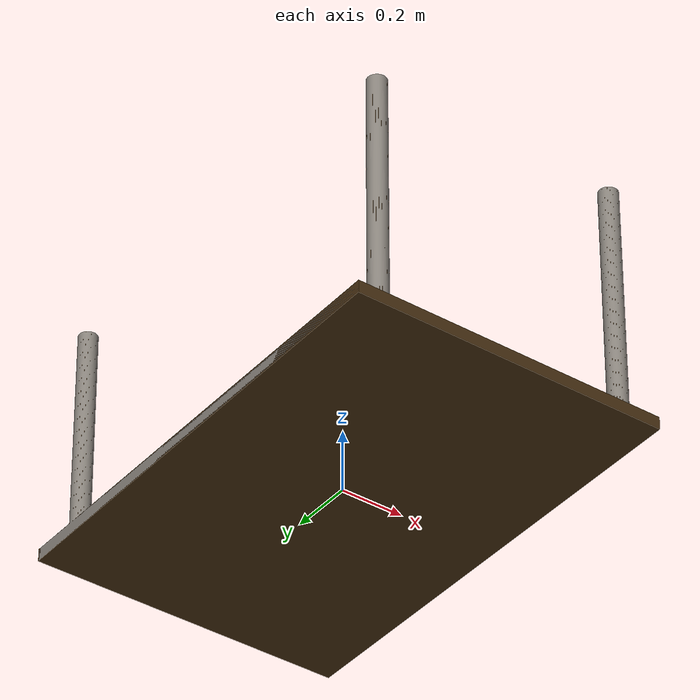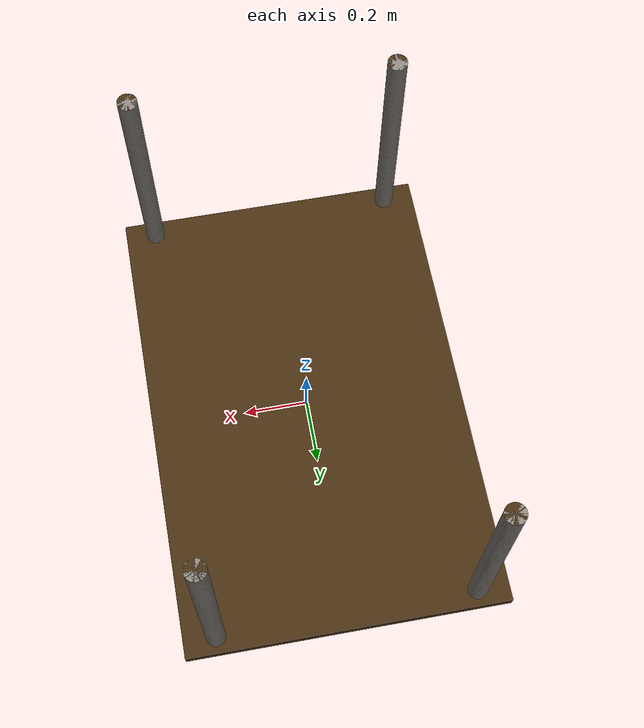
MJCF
<mujoco model="longtable">
    <compiler meshdir="assets" texturedir="assets"/>
    <asset>
        <texture name="texmarble" type="cube" file="marble.png"/>
        <material name="matmarble" texture="texmarble" rgba=".7 .7 .7 1"/>
        <mesh name="longtable_mesh" file="longtable.stl" />
    </asset>

    <default>
        <default class="collision">
            <geom condim="3" group="0" />
        </default>
        <default class="visual">
            <geom condim="3" group="1" conaffinity="0" contype="0" />
        </default>
    </default>

    <worldbody>
      <body name="base_link">
        <light mode="fixed" directional="false" diffuse=".8 .8 .8" specular="0.3 0.3 0.3" pos="0 0 -4.0" dir="0 0 1" />
        <geom class="collision" type="box" size="0.5 0.75 .02" rgba="0.266754 0.174546 0.0644028 1" />
        <geom class="collision" type="cylinder" size="0.03 0.39" pos="0.4 -0.7 0.39"  rgba="0.266754 0.174546 0.0644028 1" />
        <geom class="collision" type="cylinder" size="0.03 0.39" pos="-0.4 -0.7 0.39"  rgba="0.266754 0.174546 0.0644028 1" />
        <geom class="collision" type="cylinder" size="0.03 0.39" pos="0.4 0.7 0.39"  rgba="0.266754 0.174546 0.0644028 1" />
        <geom class="collision" type="cylinder" size="0.03 0.39" pos="-0.4 0.7 0.39"  rgba="0.266754 0.174546 0.0644028 1" />
        <geom class="visual" type="mesh" mesh="longtable_mesh" material="matmarble" />
      </body>
    </worldbody>
</mujoco>
